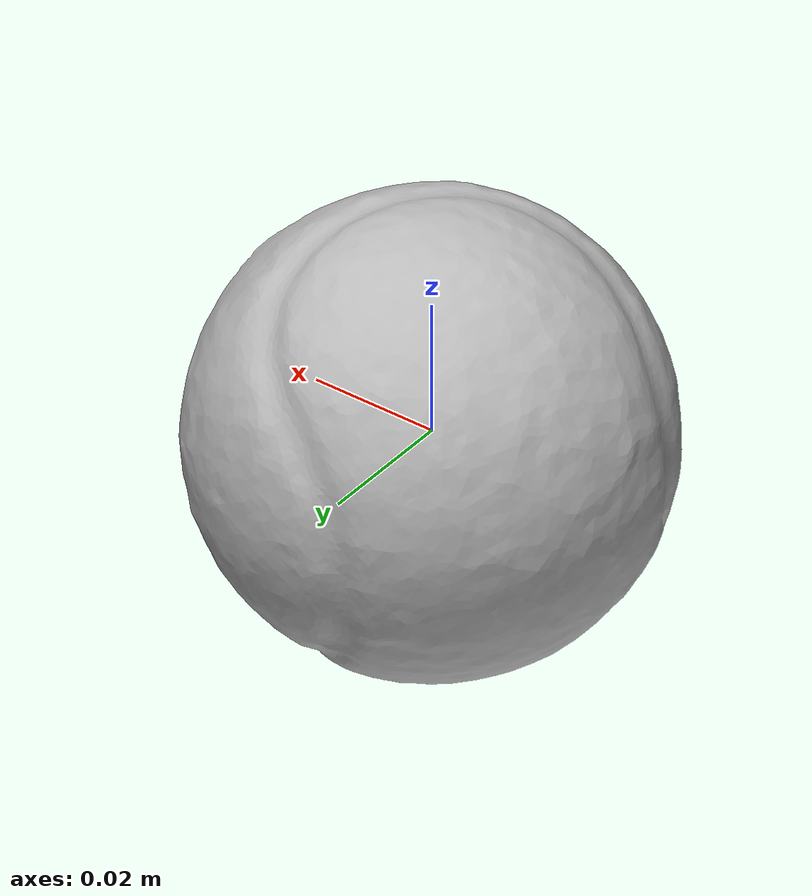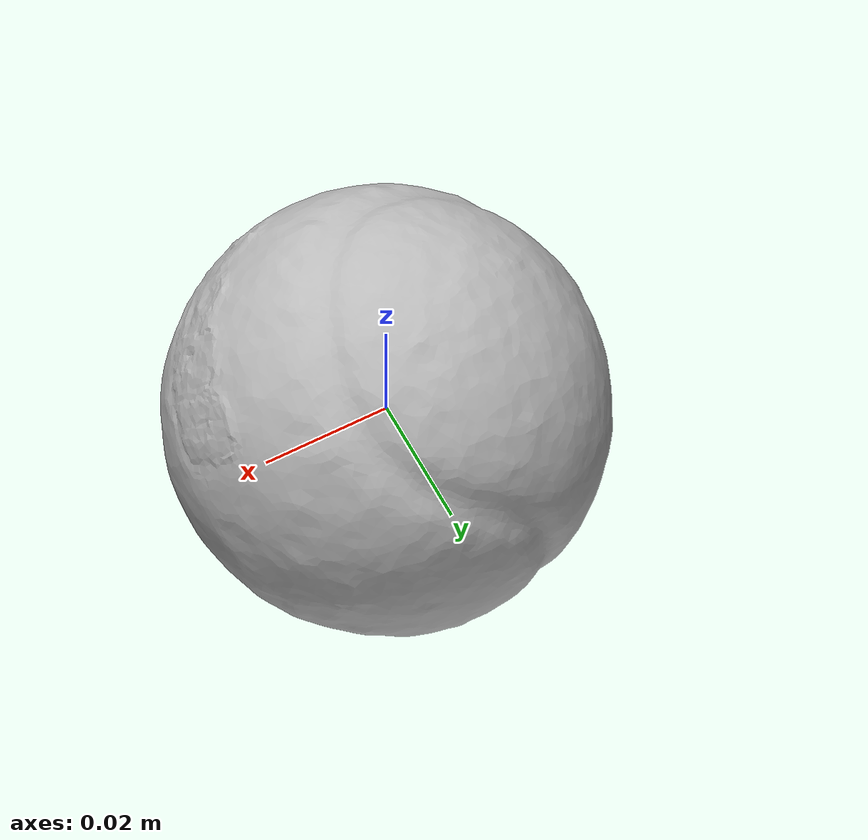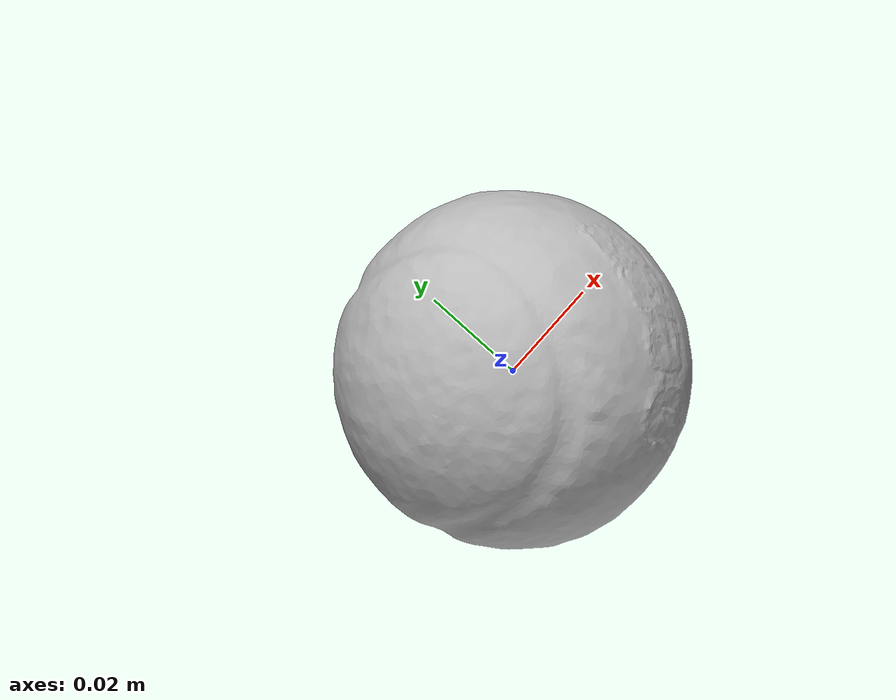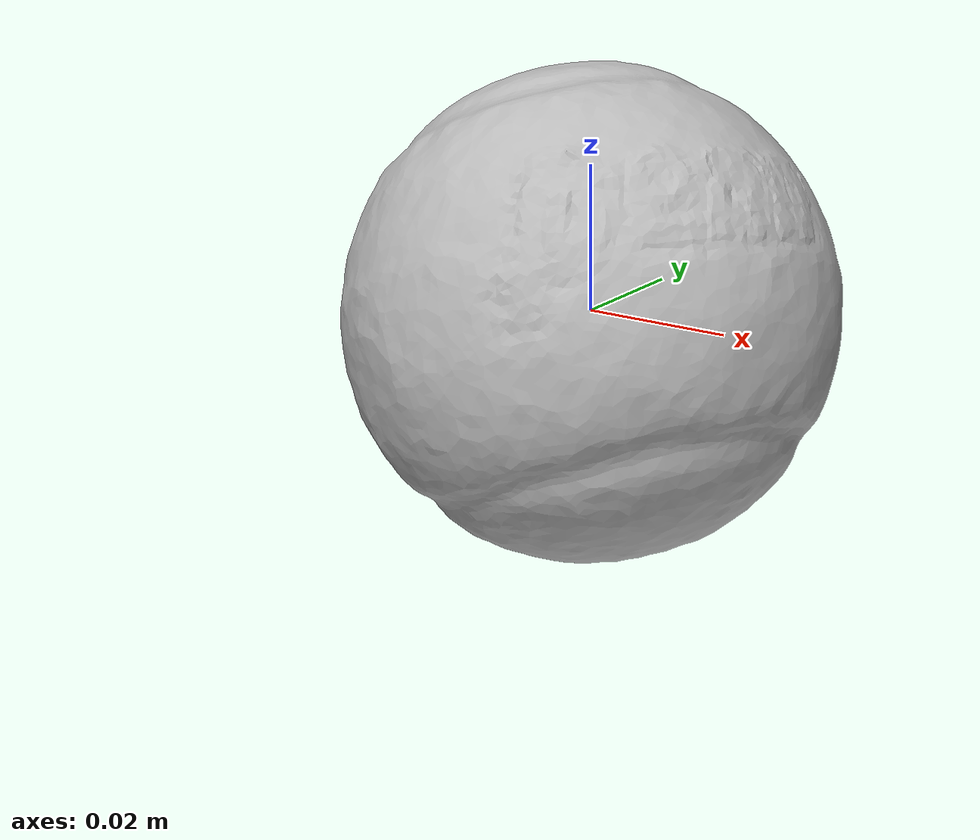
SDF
<?xml version='1.0'?>
<sdf version="1.4">
  <model name="tennis_ball">
    <static>false</static>
    <link name="link">
      <inertial>
        <pose>0.008233239762589124 -0.044192426304665286 0.03288662063700162 -2.9810379115869226 -1.017028758597178 -2.7481232420542367</pose>
        <mass>0.00015596837466282982</mass>
        <inertia>
          <ixx>6.980131429454368e-08</ixx>
          <ixy>3.308722450212111e-24</ixy>
          <ixz>0.0</ixz>
          <iyy>6.95100482329715e-08</iyy>
          <iyz>-7.858215819253763e-24</iyz>
          <izz>6.942650877097579e-08</izz>
        </inertia>
      </inertial>
      <collision name="collision">
        <geometry>
          <mesh>
            <!-- Use a downsampled mesh for collisions -->
            <uri>model://056_tennis_ball/google_16k/textured.obj</uri>
          </mesh>
        </geometry>
        <surface>
      </surface>
      </collision>
      <visual name="visual">
        <geometry>
          <mesh>
            <uri>model://056_tennis_ball/google_16k/textured.obj</uri>
          </mesh>
        </geometry>
        <material>
          <script>
            <uri>model://056_tennis_ball/tennis_ball.material</uri>
            <name>tennis_ball</name>
          </script>
        </material>
      </visual>
    </link>
    <plugin name="ROSTFPublisher" filename="ROSRobotPosePublisherPlugin.so">
    </plugin>
  </model>
</sdf>
